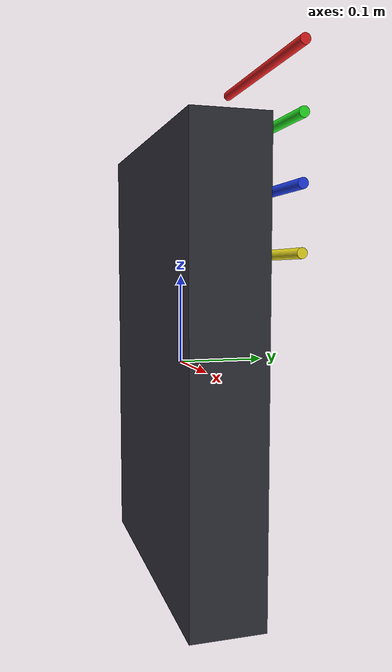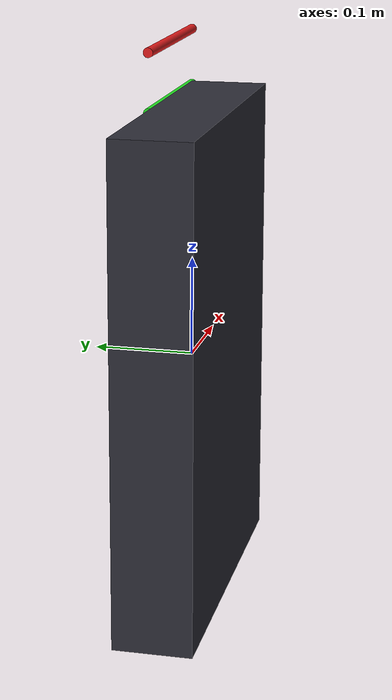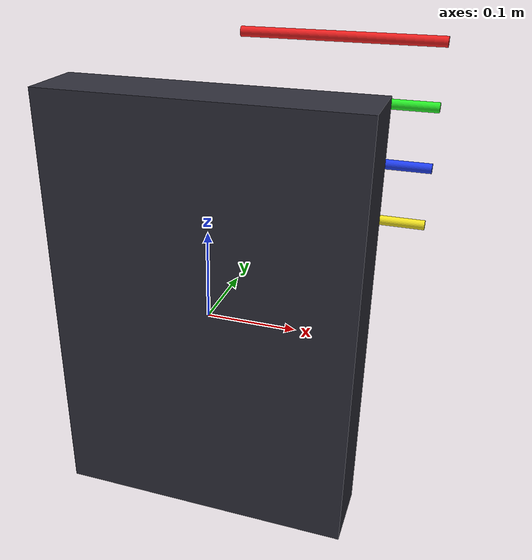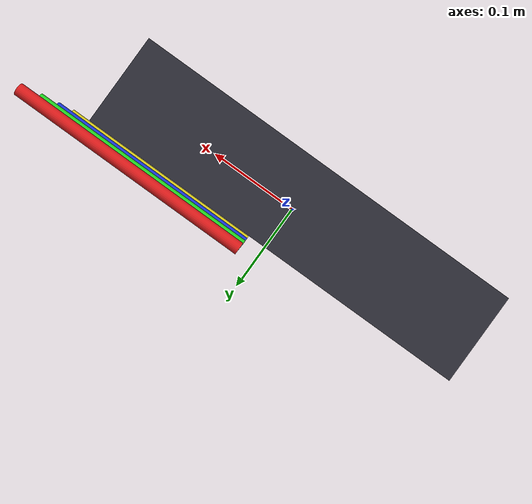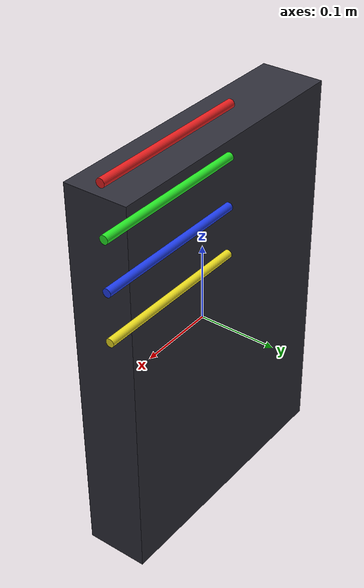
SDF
<?xml version="1.0" ?>
<sdf version="1.9">
  <model name="camera_control_panel">
    <static>true</static>

    <link name="panel_link">
      <collision name="panel_collision">
        <geometry>
          <box>
            <size>0.35 0.08 0.50</size>
          </box>
        </geometry>
      </collision>
      <visual name="panel_visual">
        <geometry>
          <box>
            <size>0.35 0.08 0.50</size>
          </box>
        </geometry>
        <material>
          <ambient>0.15 0.15 0.18 1</ambient>
          <diffuse>0.18 0.18 0.22 1</diffuse>
          <specular>0.20 0.20 0.24 1</specular>
        </material>
      </visual>

      <visual name="wire_red">
        <pose>0.12 0.05 0.30 0 1.5708 0</pose>
        <geometry>
          <cylinder>
            <radius>0.005</radius>
            <length>0.20</length>
          </cylinder>
        </geometry>
        <material>
          <ambient>0.85 0.10 0.10 1</ambient>
          <diffuse>0.90 0.12 0.12 1</diffuse>
        </material>
      </visual>

      <visual name="wire_green">
        <pose>0.12 0.05 0.24 0 1.5708 0</pose>
        <geometry>
          <cylinder>
            <radius>0.005</radius>
            <length>0.20</length>
          </cylinder>
        </geometry>
        <material>
          <ambient>0.12 0.80 0.12 1</ambient>
          <diffuse>0.15 0.90 0.15 1</diffuse>
        </material>
      </visual>

      <visual name="wire_blue">
        <pose>0.12 0.05 0.18 0 1.5708 0</pose>
        <geometry>
          <cylinder>
            <radius>0.005</radius>
            <length>0.20</length>
          </cylinder>
        </geometry>
        <material>
          <ambient>0.10 0.20 0.80 1</ambient>
          <diffuse>0.12 0.24 0.92 1</diffuse>
        </material>
      </visual>

      <visual name="wire_yellow">
        <pose>0.12 0.05 0.12 0 1.5708 0</pose>
        <geometry>
          <cylinder>
            <radius>0.005</radius>
            <length>0.20</length>
          </cylinder>
        </geometry>
        <material>
          <ambient>0.80 0.75 0.10 1</ambient>
          <diffuse>0.92 0.86 0.12 1</diffuse>
        </material>
      </visual>
    </link>
  </model>
</sdf>
